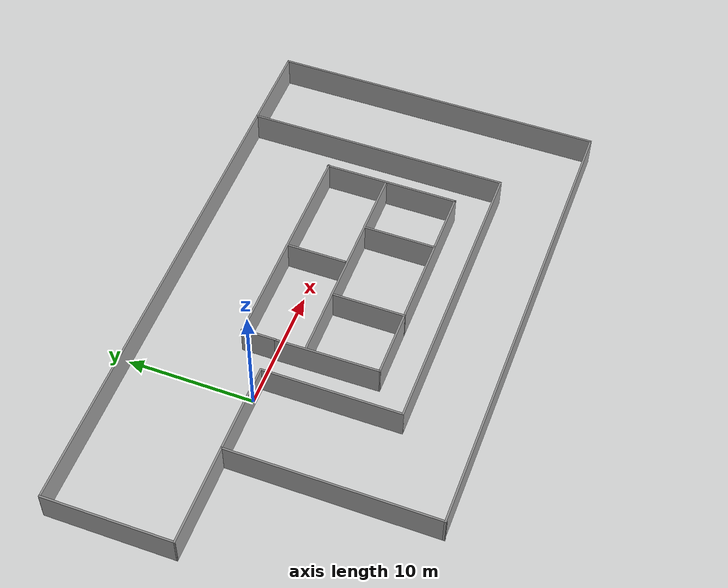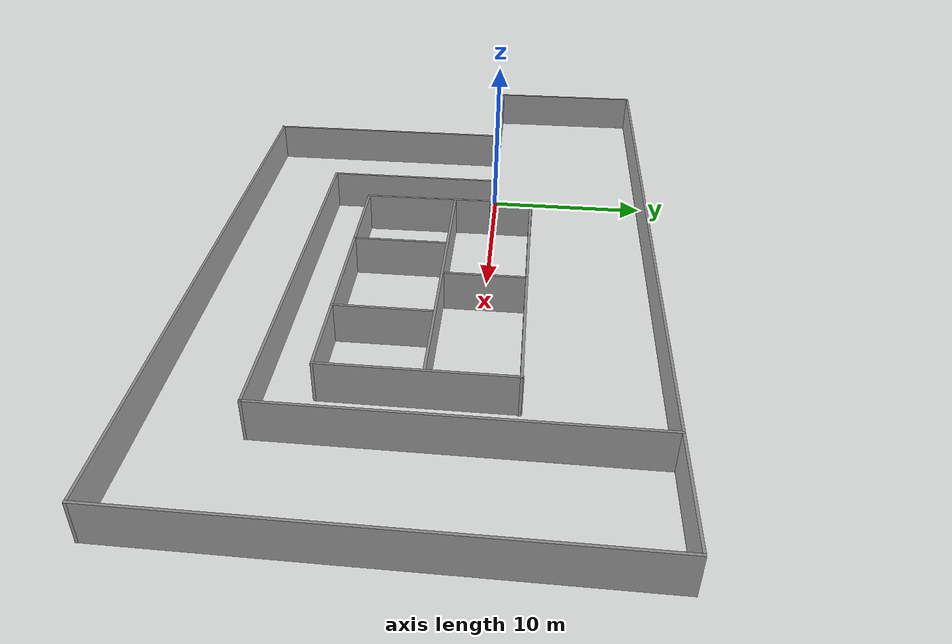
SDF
<?xml version='1.0'?>
<sdf version='1.6'>
  <model name='factory'>
    <pose frame=''>8.91615 -3.33336 0 0 -0 0</pose>
    <link name='Wall_101'>
      <collision name='Wall_101_Collision'>
        <geometry>
          <box>
            <size>5.75 0.15 2.5</size>
          </box>
        </geometry>
        <pose frame=''>0 0 1.25 0 -0 0</pose>
      </collision>
      <visual name='Wall_101_Visual'>
        <pose frame=''>0 0 1.25 0 -0 0</pose>
        <geometry>
          <box>
            <size>5.75 0.15 2.5</size>
          </box>
        </geometry>
        <material>
          <script>
            <uri>file://media/materials/scripts/gazebo.material</uri>
            <name>Gazebo/Grey</name>
          </script>
          <ambient>1 1 1 1</ambient>
        </material>
        <meta>
          <layer>0</layer>
        </meta>
      </visual>
      <pose frame=''>0.605062 -2.08067 0 0 -0 1.5708</pose>
    </link>
    <link name='Wall_103'>
      <collision name='Wall_103_Collision'>
        <geometry>
          <box>
            <size>5.75 0.15 2.5</size>
          </box>
        </geometry>
        <pose frame=''>0 0 1.25 0 -0 0</pose>
      </collision>
      <visual name='Wall_103_Visual'>
        <pose frame=''>0 0 1.25 0 -0 0</pose>
        <geometry>
          <box>
            <size>5.75 0.15 2.5</size>
          </box>
        </geometry>
        <material>
          <script>
            <uri>file://media/materials/scripts/gazebo.material</uri>
            <name>Gazebo/Grey</name>
          </script>
          <ambient>1 1 1 1</ambient>
        </material>
        <meta>
          <layer>0</layer>
        </meta>
      </visual>
      <pose frame=''>7.61027 -1.99962 0 0 -0 -1.5708</pose>
    </link>
    <link name='Wall_105'>
      <collision name='Wall_105_Collision'>
        <geometry>
          <box>
            <size>4.75 0.15 2.5</size>
          </box>
        </geometry>
        <pose frame=''>0 0 1.25 0 -0 0</pose>
      </collision>
      <visual name='Wall_105_Visual'>
        <pose frame=''>0 0 1.25 0 -0 0</pose>
        <geometry>
          <box>
            <size>4.75 0.15 2.5</size>
          </box>
        </geometry>
        <material>
          <script>
            <uri>file://media/materials/scripts/gazebo.material</uri>
            <name>Gazebo/Grey</name>
          </script>
          <ambient>1 1 1 1</ambient>
        </material>
        <meta>
          <layer>0</layer>
        </meta>
      </visual>
      <pose frame=''>3.85138 3.35667 0 0 -0 1.5708</pose>
    </link>
    <link name='Wall_75'>
      <collision name='Wall_75_Collision'>
        <geometry>
          <box>
            <size>45.3543 0.15 2.5</size>
          </box>
        </geometry>
        <pose frame=''>0 0 1.25 0 -0 0</pose>
      </collision>
      <visual name='Wall_75_Visual'>
        <pose frame=''>0 0 1.25 0 -0 0</pose>
        <geometry>
          <box>
            <size>45.3543 0.15 2.5</size>
          </box>
        </geometry>
        <material>
          <script>
            <uri>file://media/materials/scripts/gazebo.material</uri>
            <name>Gazebo/Grey</name>
          </script>
          <ambient>1 1 1 1</ambient>
        </material>
        <meta>
          <layer>0</layer>
        </meta>
      </visual>
      <pose frame=''>0.010725 13.1964 0 0 -0 0</pose>
    </link>
    <link name='Wall_76'>
      <collision name='Wall_76_Collision'>
        <geometry>
          <box>
            <size>26.5 0.15 2.5</size>
          </box>
        </geometry>
        <pose frame=''>0 0 1.25 0 -0 0</pose>
      </collision>
      <visual name='Wall_76_Visual'>
        <pose frame=''>0 0 1.25 0 -0 0</pose>
        <geometry>
          <box>
            <size>26.5 0.15 2.5</size>
          </box>
        </geometry>
        <material>
          <script>
            <uri>file://media/materials/scripts/gazebo.material</uri>
            <name>Gazebo/Grey</name>
          </script>
          <ambient>1 1 1 1</ambient>
        </material>
        <meta>
          <layer>0</layer>
        </meta>
      </visual>
      <pose frame=''>22.6129 0.021356 0 0 -0 -1.5708</pose>
    </link>
    <link name='Wall_77'>
      <collision name='Wall_77_Collision'>
        <geometry>
          <box>
            <size>37.4827 0.15 2.5</size>
          </box>
        </geometry>
        <pose frame=''>0 0 1.25 0 -0 0</pose>
      </collision>
      <visual name='Wall_77_Visual'>
        <pose frame=''>0 0 1.25 0 -0 0</pose>
        <geometry>
          <box>
            <size>37.4827 0.15 2.5</size>
          </box>
        </geometry>
        <material>
          <script>
            <uri>file://media/materials/scripts/gazebo.material</uri>
            <name>Gazebo/Grey</name>
          </script>
          <ambient>1 1 1 1</ambient>
        </material>
        <meta>
          <layer>0</layer>
        </meta>
      </visual>
      <pose frame=''>3.94666 -13.1536 0 0 -0 3.14159</pose>
    </link>
    <link name='Wall_78'>
      <collision name='Wall_78_Collision'>
        <geometry>
          <box>
            <size>16.5 0.15 2.5</size>
          </box>
        </geometry>
        <pose frame=''>0 0 1.25 0 -0 0</pose>
      </collision>
      <visual name='Wall_78_Visual'>
        <pose frame=''>0 0 1.25 0 -0 0</pose>
        <geometry>
          <box>
            <size>16.5 0.15 2.5</size>
          </box>
        </geometry>
        <material>
          <script>
            <uri>file://media/materials/scripts/gazebo.material</uri>
            <name>Gazebo/Grey</name>
          </script>
          <ambient>1 1 1 1</ambient>
        </material>
        <meta>
          <layer>0</layer>
        </meta>
      </visual>
      <pose frame=''>-14.7196 -5.02136 0 0 -0 1.5708</pose>
    </link>
    <link name='Wall_79'>
      <collision name='Wall_79_Collision'>
        <geometry>
          <box>
            <size>8 0.15 2.5</size>
          </box>
        </geometry>
        <pose frame=''>0 0 1.25 0 -0 0</pose>
      </collision>
      <visual name='Wall_79_Visual'>
        <pose frame=''>0 0 1.25 0 -0 0</pose>
        <geometry>
          <box>
            <size>8 0.15 2.5</size>
          </box>
        </geometry>
        <material>
          <script>
            <uri>file://media/materials/scripts/gazebo.material</uri>
            <name>Gazebo/Grey</name>
          </script>
          <ambient>1 1 1 1</ambient>
        </material>
        <meta>
          <layer>0</layer>
        </meta>
      </visual>
      <pose frame=''>-18.6446 3.19636 0 0 -0 3.14159</pose>
    </link>
    <link name='Wall_80'>
      <collision name='Wall_80_Collision'>
        <geometry>
          <box>
            <size>10.1289 0.15 2.5</size>
          </box>
        </geometry>
        <pose frame=''>0 0 1.25 0 -0 0</pose>
      </collision>
      <visual name='Wall_80_Visual'>
        <pose frame=''>0 0 1.25 0 -0 0</pose>
        <geometry>
          <box>
            <size>10.1289 0.15 2.5</size>
          </box>
        </geometry>
        <material>
          <script>
            <uri>file://media/materials/scripts/gazebo.material</uri>
            <name>Gazebo/Grey</name>
          </script>
          <ambient>1 1 1 1</ambient>
        </material>
        <meta>
          <layer>0</layer>
        </meta>
      </visual>
      <pose frame=''>-22.5911 8.18574 0 0 -0 1.57512</pose>
    </link>
    <link name='Wall_83'>
      <collision name='Wall_83_Collision'>
        <geometry>
          <box>
            <size>7.25 0.15 2.5</size>
          </box>
        </geometry>
        <pose frame=''>0 0 1.25 0 -0 0</pose>
      </collision>
      <visual name='Wall_83_Visual'>
        <pose frame=''>0 0 1.25 0 -0 0</pose>
        <geometry>
          <box>
            <size>7.25 0.15 2.5</size>
          </box>
        </geometry>
        <material>
          <script>
            <uri>file://media/materials/scripts/gazebo.material</uri>
            <name>Gazebo/Grey</name>
          </script>
          <ambient>1 1 1 1</ambient>
        </material>
        <meta>
          <layer>0</layer>
        </meta>
      </visual>
      <pose frame=''>-11.1696 3.19636 0 0 -0 0</pose>
    </link>
    <link name='Wall_84'>
      <collision name='Wall_84_Collision'>
        <geometry>
          <box>
            <size>11 0.15 2.5</size>
          </box>
        </geometry>
        <pose frame=''>0 0 1.25 0 -0 0</pose>
      </collision>
      <visual name='Wall_84_Visual'>
        <pose frame=''>0 0 1.25 0 -0 0</pose>
        <geometry>
          <box>
            <size>11 0.15 2.5</size>
          </box>
        </geometry>
        <material>
          <script>
            <uri>file://media/materials/scripts/gazebo.material</uri>
            <name>Gazebo/Grey</name>
          </script>
          <ambient>1 1 1 1</ambient>
        </material>
        <meta>
          <layer>0</layer>
        </meta>
      </visual>
      <pose frame=''>-7.61956 -2.22864 0 0 -0 -1.5708</pose>
    </link>
    <link name='Wall_85'>
      <collision name='Wall_85_Collision'>
        <geometry>
          <box>
            <size>23.5 0.15 2.5</size>
          </box>
        </geometry>
        <pose frame=''>0 0 1.25 0 -0 0</pose>
      </collision>
      <visual name='Wall_85_Visual'>
        <pose frame=''>0 0 1.25 0 -0 0</pose>
        <geometry>
          <box>
            <size>23.5 0.15 2.5</size>
          </box>
        </geometry>
        <material>
          <script>
            <uri>file://media/materials/scripts/gazebo.material</uri>
            <name>Gazebo/Grey</name>
          </script>
          <ambient>1 1 1 1</ambient>
        </material>
        <meta>
          <layer>0</layer>
        </meta>
      </visual>
      <pose frame=''>4.05544 -7.65364 0 0 -0 0</pose>
    </link>
    <link name='Wall_86'>
      <collision name='Wall_86_Collision'>
        <geometry>
          <box>
            <size>21 0.15 2.5</size>
          </box>
        </geometry>
        <pose frame=''>0 0 1.25 0 -0 0</pose>
      </collision>
      <visual name='Wall_86_Visual'>
        <pose frame=''>0 0 1.25 0 -0 0</pose>
        <geometry>
          <box>
            <size>21 0.15 2.5</size>
          </box>
        </geometry>
        <material>
          <script>
            <uri>file://media/materials/scripts/gazebo.material</uri>
            <name>Gazebo/Grey</name>
          </script>
          <ambient>1 1 1 1</ambient>
        </material>
        <meta>
          <layer>0</layer>
        </meta>
      </visual>
      <pose frame=''>15.7304 2.77136 0 0 -0 1.5708</pose>
    </link>
    <link name='Wall_93'>
      <collision name='Wall_93_Collision'>
        <geometry>
          <box>
            <size>8.20797 0.15 2.5</size>
          </box>
        </geometry>
        <pose frame=''>0 0 1.25 0 -0 0</pose>
      </collision>
      <visual name='Wall_93_Visual'>
        <pose frame=''>0 0 1.25 0 -0 0</pose>
        <geometry>
          <box>
            <size>8.20797 0.15 2.5</size>
          </box>
        </geometry>
        <material>
          <script>
            <uri>file://media/materials/scripts/gazebo.material</uri>
            <name>Gazebo/Grey</name>
          </script>
          <ambient>1 1 1 1</ambient>
        </material>
        <meta>
          <layer>0</layer>
        </meta>
      </visual>
      <pose frame=''>-4.78005 -0.842868 0 0 -0 -1.56025</pose>
    </link>
    <link name='Wall_94'>
      <collision name='Wall_94_Collision'>
        <geometry>
          <box>
            <size>17.5 0.15 2.5</size>
          </box>
        </geometry>
        <pose frame=''>0 0 1.25 0 -0 0</pose>
      </collision>
      <visual name='Wall_94_Visual'>
        <pose frame=''>0 0 1.25 0 -0 0</pose>
        <geometry>
          <box>
            <size>17.5 0.15 2.5</size>
          </box>
        </geometry>
        <material>
          <script>
            <uri>file://media/materials/scripts/gazebo.material</uri>
            <name>Gazebo/Grey</name>
          </script>
          <ambient>1 1 1 1</ambient>
        </material>
        <meta>
          <layer>0</layer>
        </meta>
      </visual>
      <pose frame=''>3.93743 -4.87163 0 0 -0 0</pose>
    </link>
    <link name='Wall_95'>
      <collision name='Wall_95_Collision'>
        <geometry>
          <box>
            <size>10.7712 0.15 2.5</size>
          </box>
        </geometry>
        <pose frame=''>0 0 1.25 0 -0 0</pose>
      </collision>
      <visual name='Wall_95_Visual'>
        <pose frame=''>0 0 1.25 0 -0 0</pose>
        <geometry>
          <box>
            <size>10.7712 0.15 2.5</size>
          </box>
        </geometry>
        <material>
          <script>
            <uri>file://media/materials/scripts/gazebo.material</uri>
            <name>Gazebo/Grey</name>
          </script>
          <ambient>1 1 1 1</ambient>
        </material>
        <meta>
          <layer>0</layer>
        </meta>
      </visual>
      <pose frame=''>12.6124 0.438993 0 0 -0 1.5708</pose>
    </link>
    <link name='Wall_96'>
      <collision name='Wall_96_Collision'>
        <geometry>
          <box>
            <size>17.5639 0.15 2.5</size>
          </box>
        </geometry>
        <pose frame=''>0 0 1.25 0 -0 0</pose>
      </collision>
      <visual name='Wall_96_Visual'>
        <pose frame=''>0 0 1.25 0 -0 0</pose>
        <geometry>
          <box>
            <size>17.5639 0.15 2.5</size>
          </box>
        </geometry>
        <material>
          <script>
            <uri>file://media/materials/scripts/gazebo.material</uri>
            <name>Gazebo/Grey</name>
          </script>
          <ambient>1 1 1 1</ambient>
        </material>
        <meta>
          <layer>0</layer>
        </meta>
      </visual>
      <pose frame=''>3.94829 5.74628 0 0 -0 3.13707</pose>
    </link>
    <link name='Wall_97'>
      <collision name='Wall_97_Collision'>
        <geometry>
          <box>
            <size>2.77125 0.15 2.5</size>
          </box>
        </geometry>
        <pose frame=''>0 0 1.25 0 -0 0</pose>
      </collision>
      <visual name='Wall_97_Visual'>
        <pose frame=''>0 0 1.25 0 -0 0</pose>
        <geometry>
          <box>
            <size>2.77125 0.15 2.5</size>
          </box>
        </geometry>
        <material>
          <script>
            <uri>file://media/materials/scripts/gazebo.material</uri>
            <name>Gazebo/Grey</name>
          </script>
          <ambient>1 1 1 1</ambient>
        </material>
        <meta>
          <layer>0</layer>
        </meta>
      </visual>
      <pose frame=''>-4.80128 4.51776 0 0 -0 -1.5708</pose>
    </link>
    <link name='Wall_99'>
      <collision name='Wall_99_Collision'>
        <geometry>
          <box>
            <size>17.25 0.15 2.5</size>
          </box>
        </geometry>
        <pose frame=''>0 0 1.25 0 -0 0</pose>
      </collision>
      <visual name='Wall_99_Visual'>
        <pose frame=''>0 0 1.25 0 -0 0</pose>
        <geometry>
          <box>
            <size>17.25 0.15 2.5</size>
          </box>
        </geometry>
        <material>
          <script>
            <uri>file://media/materials/scripts/gazebo.material</uri>
            <name>Gazebo/Grey</name>
          </script>
          <ambient>1 1 1 1</ambient>
        </material>
        <meta>
          <layer>0</layer>
        </meta>
      </visual>
      <pose frame=''>3.90116 0.843098 0 0 -0 0</pose>
    </link>
    <static>1</static>
  </model>
</sdf>
